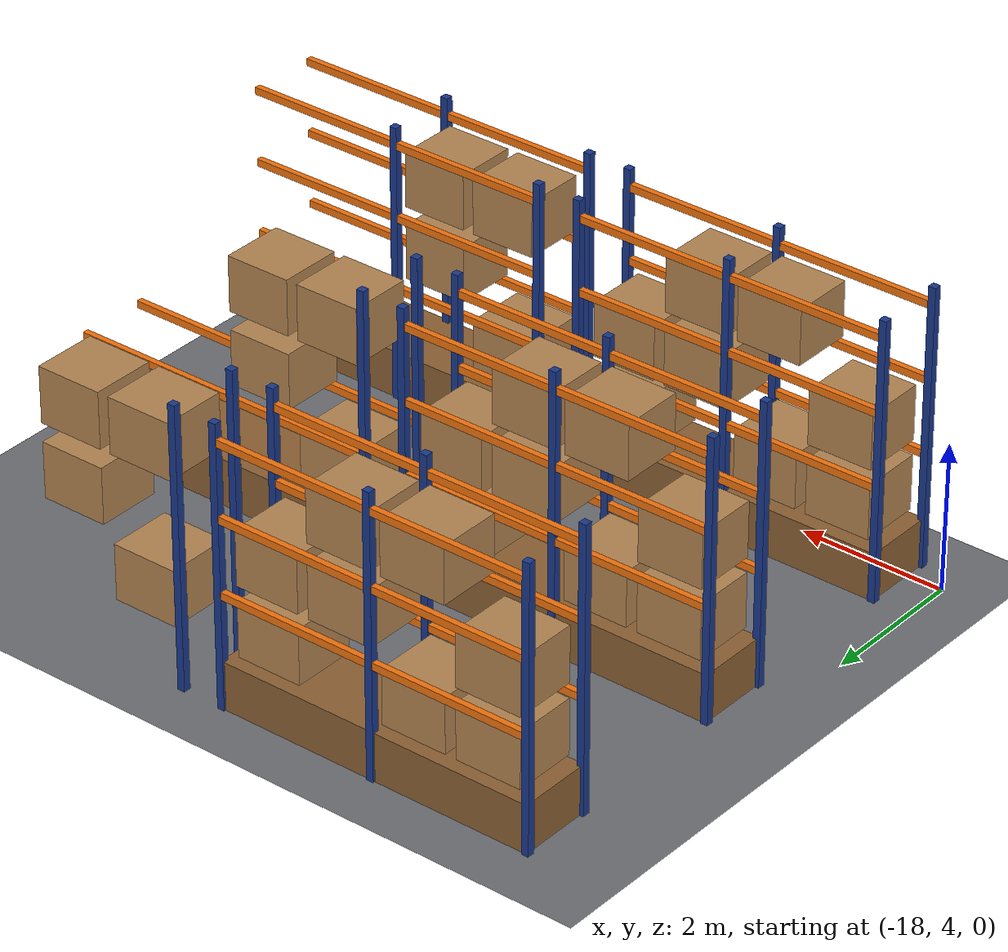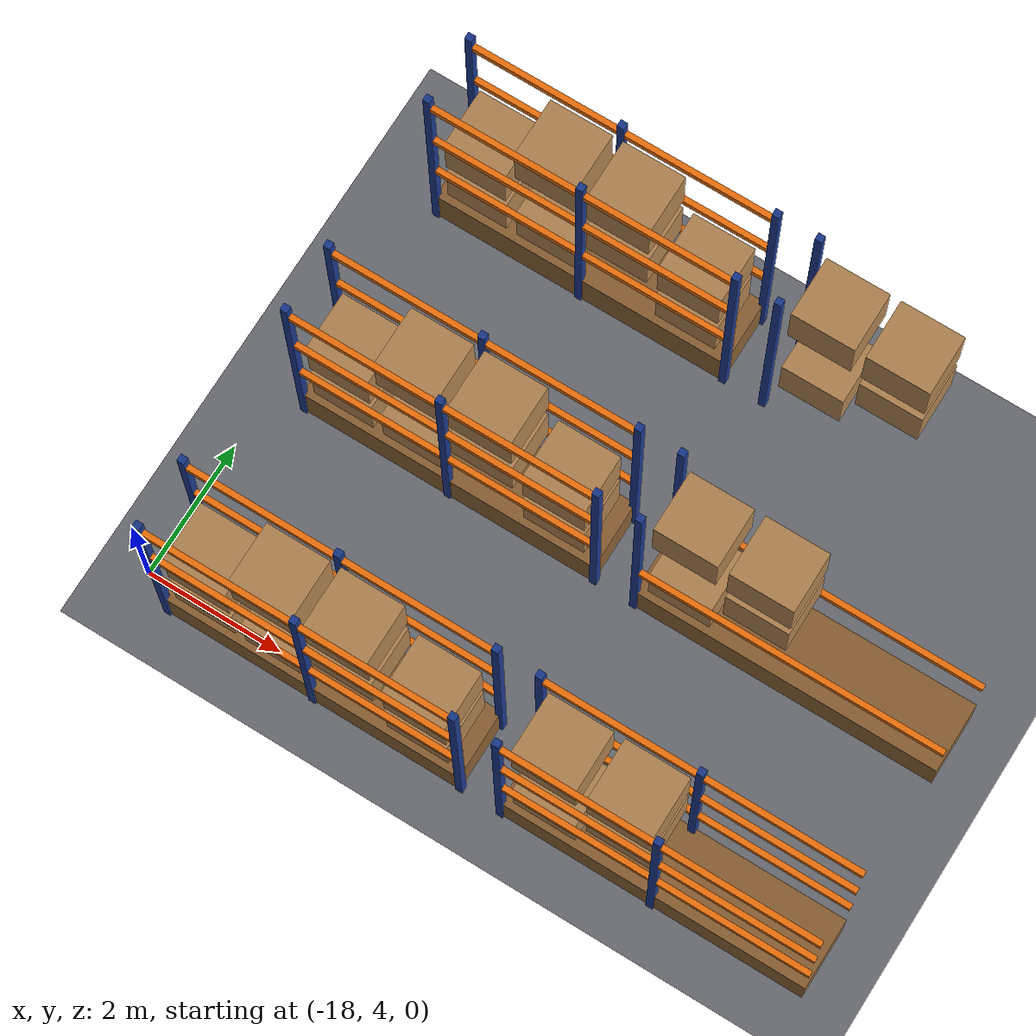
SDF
<sdf version="1.8">
 <world name="factory">
  <model name="ground">
   <static>true</static>
   <link name="l">
    <collision name="c">
     <geometry><plane><normal>0 0 1</normal><size>60 40</size></plane></geometry>
     <surface><friction><ode><mu>1.0</mu><mu2>1.0</mu2></ode></friction></surface>
    </collision>
    <visual name="v">
     <geometry><plane><normal>0 0 1</normal><size>60 40</size></plane></geometry>
     <material>
      <ambient>0.42 0.43 0.45 1</ambient>
      <diffuse>0.42 0.43 0.45 1</diffuse>
      <specular>0.3 0.3 0.3 1</specular>
      <pbr><metal><metalness>0.0</metalness><roughness>0.85</roughness></metal></pbr>
     </material>
    </visual>
   </link>
  </model>
  <model name="pallet_racks">
   <static>true</static>
   <link name="l0">
    <pose>-15.300 4.200 0.325 0 0 0.000</pose>
    <collision name="c"><geometry><box><size>4.4 1.0 0.65</size></box></geometry></collision>
    <visual name="v">
     <geometry><box><size>4.4 1.0 0.65</size></box></geometry>
     <material>
      <ambient>0.55 0.38 0.2 1</ambient>
      <diffuse>0.55 0.38 0.2 1</diffuse>
      <specular>0.3 0.3 0.3 1</specular>
      <pbr><metal><metalness>0.0</metalness><roughness>0.9</roughness></metal></pbr>
     </material>
    </visual>
   </link>
   <link name="l1">
    <pose>-16.900 4.200 1.125 0 0 0.000</pose>
    <collision name="c"><geometry><box><size>0.9 0.85 0.75</size></box></geometry></collision>
    <visual name="v">
     <geometry><box><size>0.9 0.85 0.75</size></box></geometry>
     <material>
      <ambient>0.7 0.52 0.32 1</ambient>
      <diffuse>0.7 0.52 0.32 1</diffuse>
      <specular>0.3 0.3 0.3 1</specular>
      <pbr><metal><metalness>0.0</metalness><roughness>0.95</roughness></metal></pbr>
     </material>
    </visual>
   </link>
   <link name="l2">
    <pose>-15.850 4.200 1.125 0 0 0.000</pose>
    <collision name="c"><geometry><box><size>0.9 0.85 0.75</size></box></geometry></collision>
    <visual name="v">
     <geometry><box><size>0.9 0.85 0.75</size></box></geometry>
     <material>
      <ambient>0.7 0.52 0.32 1</ambient>
      <diffuse>0.7 0.52 0.32 1</diffuse>
      <specular>0.3 0.3 0.3 1</specular>
      <pbr><metal><metalness>0.0</metalness><roughness>0.95</roughness></metal></pbr>
     </material>
    </visual>
   </link>
   <link name="l3">
    <pose>-13.750 4.200 1.125 0 0 0.000</pose>
    <collision name="c"><geometry><box><size>0.9 0.85 0.75</size></box></geometry></collision>
    <visual name="v">
     <geometry><box><size>0.9 0.85 0.75</size></box></geometry>
     <material>
      <ambient>0.7 0.52 0.32 1</ambient>
      <diffuse>0.7 0.52 0.32 1</diffuse>
      <specular>0.3 0.3 0.3 1</specular>
      <pbr><metal><metalness>0.0</metalness><roughness>0.95</roughness></metal></pbr>
     </material>
    </visual>
   </link>
   <link name="l4">
    <pose>-16.900 4.200 2.075 0 0 0.000</pose>
    <collision name="c"><geometry><box><size>0.9 0.85 0.75</size></box></geometry></collision>
    <visual name="v">
     <geometry><box><size>0.9 0.85 0.75</size></box></geometry>
     <material>
      <ambient>0.7 0.52 0.32 1</ambient>
      <diffuse>0.7 0.52 0.32 1</diffuse>
      <specular>0.3 0.3 0.3 1</specular>
      <pbr><metal><metalness>0.0</metalness><roughness>0.95</roughness></metal></pbr>
     </material>
    </visual>
   </link>
   <link name="l5">
    <pose>-14.800 4.200 2.075 0 0 0.000</pose>
    <collision name="c"><geometry><box><size>0.9 0.85 0.75</size></box></geometry></collision>
    <visual name="v">
     <geometry><box><size>0.9 0.85 0.75</size></box></geometry>
     <material>
      <ambient>0.7 0.52 0.32 1</ambient>
      <diffuse>0.7 0.52 0.32 1</diffuse>
      <specular>0.3 0.3 0.3 1</specular>
      <pbr><metal><metalness>0.0</metalness><roughness>0.95</roughness></metal></pbr>
     </material>
    </visual>
   </link>
   <link name="l6">
    <pose>-13.750 4.200 2.075 0 0 0.000</pose>
    <collision name="c"><geometry><box><size>0.9 0.85 0.75</size></box></geometry></collision>
    <visual name="v">
     <geometry><box><size>0.9 0.85 0.75</size></box></geometry>
     <material>
      <ambient>0.7 0.52 0.32 1</ambient>
      <diffuse>0.7 0.52 0.32 1</diffuse>
      <specular>0.3 0.3 0.3 1</specular>
      <pbr><metal><metalness>0.0</metalness><roughness>0.95</roughness></metal></pbr>
     </material>
    </visual>
   </link>
   <link name="l7">
    <pose>-15.850 4.200 3.075 0 0 0.000</pose>
    <collision name="c"><geometry><box><size>0.9 0.85 0.75</size></box></geometry></collision>
    <visual name="v">
     <geometry><box><size>0.9 0.85 0.75</size></box></geometry>
     <material>
      <ambient>0.7 0.52 0.32 1</ambient>
      <diffuse>0.7 0.52 0.32 1</diffuse>
      <specular>0.3 0.3 0.3 1</specular>
      <pbr><metal><metalness>0.0</metalness><roughness>0.95</roughness></metal></pbr>
     </material>
    </visual>
   </link>
   <link name="l8">
    <pose>-14.800 4.200 3.075 0 0 0.000</pose>
    <collision name="c"><geometry><box><size>0.9 0.85 0.75</size></box></geometry></collision>
    <visual name="v">
     <geometry><box><size>0.9 0.85 0.75</size></box></geometry>
     <material>
      <ambient>0.7 0.52 0.32 1</ambient>
      <diffuse>0.7 0.52 0.32 1</diffuse>
      <specular>0.3 0.3 0.3 1</specular>
      <pbr><metal><metalness>0.0</metalness><roughness>0.95</roughness></metal></pbr>
     </material>
    </visual>
   </link>
   <link name="l9">
    <pose>-15.300 3.720 1.550 0 0 0.000</pose>
    <collision name="c"><geometry><box><size>4.4 0.08 0.1</size></box></geometry></collision>
    <visual name="v">
     <geometry><box><size>4.4 0.08 0.1</size></box></geometry>
     <material>
      <ambient>0.95 0.45 0.05 1</ambient>
      <diffuse>0.95 0.45 0.05 1</diffuse>
      <specular>0.3 0.3 0.3 1</specular>
      <pbr><metal><metalness>0.5</metalness><roughness>0.4</roughness></metal></pbr>
     </material>
    </visual>
   </link>
   <link name="l10">
    <pose>-15.300 4.680 1.550 0 0 0.000</pose>
    <collision name="c"><geometry><box><size>4.4 0.08 0.1</size></box></geometry></collision>
    <visual name="v">
     <geometry><box><size>4.4 0.08 0.1</size></box></geometry>
     <material>
      <ambient>0.95 0.45 0.05 1</ambient>
      <diffuse>0.95 0.45 0.05 1</diffuse>
      <specular>0.3 0.3 0.3 1</specular>
      <pbr><metal><metalness>0.5</metalness><roughness>0.4</roughness></metal></pbr>
     </material>
    </visual>
   </link>
   <link name="l11">
    <pose>-15.300 3.720 2.550 0 0 0.000</pose>
    <collision name="c"><geometry><box><size>4.4 0.08 0.1</size></box></geometry></collision>
    <visual name="v">
     <geometry><box><size>4.4 0.08 0.1</size></box></geometry>
     <material>
      <ambient>0.95 0.45 0.05 1</ambient>
      <diffuse>0.95 0.45 0.05 1</diffuse>
      <specular>0.3 0.3 0.3 1</specular>
      <pbr><metal><metalness>0.5</metalness><roughness>0.4</roughness></metal></pbr>
     </material>
    </visual>
   </link>
   <link name="l12">
    <pose>-15.300 4.680 2.550 0 0 0.000</pose>
    <collision name="c"><geometry><box><size>4.4 0.08 0.1</size></box></geometry></collision>
    <visual name="v">
     <geometry><box><size>4.4 0.08 0.1</size></box></geometry>
     <material>
      <ambient>0.95 0.45 0.05 1</ambient>
      <diffuse>0.95 0.45 0.05 1</diffuse>
      <specular>0.3 0.3 0.3 1</specular>
      <pbr><metal><metalness>0.5</metalness><roughness>0.4</roughness></metal></pbr>
     </material>
    </visual>
   </link>
   <link name="l13">
    <pose>-15.300 3.720 3.550 0 0 0.000</pose>
    <collision name="c"><geometry><box><size>4.4 0.08 0.1</size></box></geometry></collision>
    <visual name="v">
     <geometry><box><size>4.4 0.08 0.1</size></box></geometry>
     <material>
      <ambient>0.95 0.45 0.05 1</ambient>
      <diffuse>0.95 0.45 0.05 1</diffuse>
      <specular>0.3 0.3 0.3 1</specular>
      <pbr><metal><metalness>0.5</metalness><roughness>0.4</roughness></metal></pbr>
     </material>
    </visual>
   </link>
   <link name="l14">
    <pose>-15.300 4.680 3.550 0 0 0.000</pose>
    <collision name="c"><geometry><box><size>4.4 0.08 0.1</size></box></geometry></collision>
    <visual name="v">
     <geometry><box><size>4.4 0.08 0.1</size></box></geometry>
     <material>
      <ambient>0.95 0.45 0.05 1</ambient>
      <diffuse>0.95 0.45 0.05 1</diffuse>
      <specular>0.3 0.3 0.3 1</specular>
      <pbr><metal><metalness>0.5</metalness><roughness>0.4</roughness></metal></pbr>
     </material>
    </visual>
   </link>
   <link name="l15">
    <pose>-17.500 3.720 1.900 0 0 0.000</pose>
    <collision name="c"><geometry><box><size>0.1 0.1 3.8</size></box></geometry></collision>
    <visual name="v">
     <geometry><box><size>0.1 0.1 3.8</size></box></geometry>
     <material>
      <ambient>0.1 0.22 0.55 1</ambient>
      <diffuse>0.1 0.22 0.55 1</diffuse>
      <specular>0.3 0.3 0.3 1</specular>
      <pbr><metal><metalness>0.6</metalness><roughness>0.4</roughness></metal></pbr>
     </material>
    </visual>
   </link>
   <link name="l16">
    <pose>-17.500 4.680 1.900 0 0 0.000</pose>
    <collision name="c"><geometry><box><size>0.1 0.1 3.8</size></box></geometry></collision>
    <visual name="v">
     <geometry><box><size>0.1 0.1 3.8</size></box></geometry>
     <material>
      <ambient>0.1 0.22 0.55 1</ambient>
      <diffuse>0.1 0.22 0.55 1</diffuse>
      <specular>0.3 0.3 0.3 1</specular>
      <pbr><metal><metalness>0.6</metalness><roughness>0.4</roughness></metal></pbr>
     </material>
    </visual>
   </link>
   <link name="l17">
    <pose>-15.300 3.720 1.900 0 0 0.000</pose>
    <collision name="c"><geometry><box><size>0.1 0.1 3.8</size></box></geometry></collision>
    <visual name="v">
     <geometry><box><size>0.1 0.1 3.8</size></box></geometry>
     <material>
      <ambient>0.1 0.22 0.55 1</ambient>
      <diffuse>0.1 0.22 0.55 1</diffuse>
      <specular>0.3 0.3 0.3 1</specular>
      <pbr><metal><metalness>0.6</metalness><roughness>0.4</roughness></metal></pbr>
     </material>
    </visual>
   </link>
   <link name="l18">
    <pose>-15.300 4.680 1.900 0 0 0.000</pose>
    <collision name="c"><geometry><box><size>0.1 0.1 3.8</size></box></geometry></collision>
    <visual name="v">
     <geometry><box><size>0.1 0.1 3.8</size></box></geometry>
     <material>
      <ambient>0.1 0.22 0.55 1</ambient>
      <diffuse>0.1 0.22 0.55 1</diffuse>
      <specular>0.3 0.3 0.3 1</specular>
      <pbr><metal><metalness>0.6</metalness><roughness>0.4</roughness></metal></pbr>
     </material>
    </visual>
   </link>
   <link name="l19">
    <pose>-13.100 3.720 1.900 0 0 0.000</pose>
    <collision name="c"><geometry><box><size>0.1 0.1 3.8</size></box></geometry></collision>
    <visual name="v">
     <geometry><box><size>0.1 0.1 3.8</size></box></geometry>
     <material>
      <ambient>0.1 0.22 0.55 1</ambient>
      <diffuse>0.1 0.22 0.55 1</diffuse>
      <specular>0.3 0.3 0.3 1</specular>
      <pbr><metal><metalness>0.6</metalness><roughness>0.4</roughness></metal></pbr>
     </material>
    </visual>
   </link>
   <link name="l20">
    <pose>-13.100 4.680 1.900 0 0 0.000</pose>
    <collision name="c"><geometry><box><size>0.1 0.1 3.8</size></box></geometry></collision>
    <visual name="v">
     <geometry><box><size>0.1 0.1 3.8</size></box></geometry>
     <material>
      <ambient>0.1 0.22 0.55 1</ambient>
      <diffuse>0.1 0.22 0.55 1</diffuse>
      <specular>0.3 0.3 0.3 1</specular>
      <pbr><metal><metalness>0.6</metalness><roughness>0.4</roughness></metal></pbr>
     </material>
    </visual>
   </link>
   <link name="l21">
    <pose>-10.300 4.200 0.325 0 0 0.000</pose>
    <collision name="c"><geometry><box><size>4.4 1.0 0.65</size></box></geometry></collision>
    <visual name="v">
     <geometry><box><size>4.4 1.0 0.65</size></box></geometry>
     <material>
      <ambient>0.55 0.38 0.2 1</ambient>
      <diffuse>0.55 0.38 0.2 1</diffuse>
      <specular>0.3 0.3 0.3 1</specular>
      <pbr><metal><metalness>0.0</metalness><roughness>0.9</roughness></metal></pbr>
     </material>
    </visual>
   </link>
   <link name="l22">
    <pose>-11.900 4.200 1.125 0 0 0.000</pose>
    <collision name="c"><geometry><box><size>0.9 0.85 0.75</size></box></geometry></collision>
    <visual name="v">
     <geometry><box><size>0.9 0.85 0.75</size></box></geometry>
     <material>
      <ambient>0.7 0.52 0.32 1</ambient>
      <diffuse>0.7 0.52 0.32 1</diffuse>
      <specular>0.3 0.3 0.3 1</specular>
      <pbr><metal><metalness>0.0</metalness><roughness>0.95</roughness></metal></pbr>
     </material>
    </visual>
   </link>
   <link name="l25">
    <pose>-10.850 4.200 2.075 0 0 0.000</pose>
    <collision name="c"><geometry><box><size>0.9 0.85 0.75</size></box></geometry></collision>
    <visual name="v">
     <geometry><box><size>0.9 0.85 0.75</size></box></geometry>
     <material>
      <ambient>0.7 0.52 0.32 1</ambient>
      <diffuse>0.7 0.52 0.32 1</diffuse>
      <specular>0.3 0.3 0.3 1</specular>
      <pbr><metal><metalness>0.0</metalness><roughness>0.95</roughness></metal></pbr>
     </material>
    </visual>
   </link>
   <link name="l27">
    <pose>-11.900 4.200 3.075 0 0 0.000</pose>
    <collision name="c"><geometry><box><size>0.9 0.85 0.75</size></box></geometry></collision>
    <visual name="v">
     <geometry><box><size>0.9 0.85 0.75</size></box></geometry>
     <material>
      <ambient>0.7 0.52 0.32 1</ambient>
      <diffuse>0.7 0.52 0.32 1</diffuse>
      <specular>0.3 0.3 0.3 1</specular>
      <pbr><metal><metalness>0.0</metalness><roughness>0.95</roughness></metal></pbr>
     </material>
    </visual>
   </link>
   <link name="l28">
    <pose>-10.850 4.200 3.075 0 0 0.000</pose>
    <collision name="c"><geometry><box><size>0.9 0.85 0.75</size></box></geometry></collision>
    <visual name="v">
     <geometry><box><size>0.9 0.85 0.75</size></box></geometry>
     <material>
      <ambient>0.7 0.52 0.32 1</ambient>
      <diffuse>0.7 0.52 0.32 1</diffuse>
      <specular>0.3 0.3 0.3 1</specular>
      <pbr><metal><metalness>0.0</metalness><roughness>0.95</roughness></metal></pbr>
     </material>
    </visual>
   </link>
   <link name="l30">
    <pose>-10.300 3.720 1.550 0 0 0.000</pose>
    <collision name="c"><geometry><box><size>4.4 0.08 0.1</size></box></geometry></collision>
    <visual name="v">
     <geometry><box><size>4.4 0.08 0.1</size></box></geometry>
     <material>
      <ambient>0.95 0.45 0.05 1</ambient>
      <diffuse>0.95 0.45 0.05 1</diffuse>
      <specular>0.3 0.3 0.3 1</specular>
      <pbr><metal><metalness>0.5</metalness><roughness>0.4</roughness></metal></pbr>
     </material>
    </visual>
   </link>
   <link name="l31">
    <pose>-10.300 4.680 1.550 0 0 0.000</pose>
    <collision name="c"><geometry><box><size>4.4 0.08 0.1</size></box></geometry></collision>
    <visual name="v">
     <geometry><box><size>4.4 0.08 0.1</size></box></geometry>
     <material>
      <ambient>0.95 0.45 0.05 1</ambient>
      <diffuse>0.95 0.45 0.05 1</diffuse>
      <specular>0.3 0.3 0.3 1</specular>
      <pbr><metal><metalness>0.5</metalness><roughness>0.4</roughness></metal></pbr>
     </material>
    </visual>
   </link>
   <link name="l32">
    <pose>-10.300 3.720 2.550 0 0 0.000</pose>
    <collision name="c"><geometry><box><size>4.4 0.08 0.1</size></box></geometry></collision>
    <visual name="v">
     <geometry><box><size>4.4 0.08 0.1</size></box></geometry>
     <material>
      <ambient>0.95 0.45 0.05 1</ambient>
      <diffuse>0.95 0.45 0.05 1</diffuse>
      <specular>0.3 0.3 0.3 1</specular>
      <pbr><metal><metalness>0.5</metalness><roughness>0.4</roughness></metal></pbr>
     </material>
    </visual>
   </link>
   <link name="l33">
    <pose>-10.300 4.680 2.550 0 0 0.000</pose>
    <collision name="c"><geometry><box><size>4.4 0.08 0.1</size></box></geometry></collision>
    <visual name="v">
     <geometry><box><size>4.4 0.08 0.1</size></box></geometry>
     <material>
      <ambient>0.95 0.45 0.05 1</ambient>
      <diffuse>0.95 0.45 0.05 1</diffuse>
      <specular>0.3 0.3 0.3 1</specular>
      <pbr><metal><metalness>0.5</metalness><roughness>0.4</roughness></metal></pbr>
     </material>
    </visual>
   </link>
   <link name="l34">
    <pose>-10.300 3.720 3.550 0 0 0.000</pose>
    <collision name="c"><geometry><box><size>4.4 0.08 0.1</size></box></geometry></collision>
    <visual name="v">
     <geometry><box><size>4.4 0.08 0.1</size></box></geometry>
     <material>
      <ambient>0.95 0.45 0.05 1</ambient>
      <diffuse>0.95 0.45 0.05 1</diffuse>
      <specular>0.3 0.3 0.3 1</specular>
      <pbr><metal><metalness>0.5</metalness><roughness>0.4</roughness></metal></pbr>
     </material>
    </visual>
   </link>
   <link name="l35">
    <pose>-10.300 4.680 3.550 0 0 0.000</pose>
    <collision name="c"><geometry><box><size>4.4 0.08 0.1</size></box></geometry></collision>
    <visual name="v">
     <geometry><box><size>4.4 0.08 0.1</size></box></geometry>
     <material>
      <ambient>0.95 0.45 0.05 1</ambient>
      <diffuse>0.95 0.45 0.05 1</diffuse>
      <specular>0.3 0.3 0.3 1</specular>
      <pbr><metal><metalness>0.5</metalness><roughness>0.4</roughness></metal></pbr>
     </material>
    </visual>
   </link>
   <link name="l36">
    <pose>-12.500 3.720 1.900 0 0 0.000</pose>
    <collision name="c"><geometry><box><size>0.1 0.1 3.8</size></box></geometry></collision>
    <visual name="v">
     <geometry><box><size>0.1 0.1 3.8</size></box></geometry>
     <material>
      <ambient>0.1 0.22 0.55 1</ambient>
      <diffuse>0.1 0.22 0.55 1</diffuse>
      <specular>0.3 0.3 0.3 1</specular>
      <pbr><metal><metalness>0.6</metalness><roughness>0.4</roughness></metal></pbr>
     </material>
    </visual>
   </link>
   <link name="l37">
    <pose>-12.500 4.680 1.900 0 0 0.000</pose>
    <collision name="c"><geometry><box><size>0.1 0.1 3.8</size></box></geometry></collision>
    <visual name="v">
     <geometry><box><size>0.1 0.1 3.8</size></box></geometry>
     <material>
      <ambient>0.1 0.22 0.55 1</ambient>
      <diffuse>0.1 0.22 0.55 1</diffuse>
      <specular>0.3 0.3 0.3 1</specular>
      <pbr><metal><metalness>0.6</metalness><roughness>0.4</roughness></metal></pbr>
     </material>
    </visual>
   </link>
   <link name="l38">
    <pose>-10.300 3.720 1.900 0 0 0.000</pose>
    <collision name="c"><geometry><box><size>0.1 0.1 3.8</size></box></geometry></collision>
    <visual name="v">
     <geometry><box><size>0.1 0.1 3.8</size></box></geometry>
     <material>
      <ambient>0.1 0.22 0.55 1</ambient>
      <diffuse>0.1 0.22 0.55 1</diffuse>
      <specular>0.3 0.3 0.3 1</specular>
      <pbr><metal><metalness>0.6</metalness><roughness>0.4</roughness></metal></pbr>
     </material>
    </visual>
   </link>
   <link name="l39">
    <pose>-10.300 4.680 1.900 0 0 0.000</pose>
    <collision name="c"><geometry><box><size>0.1 0.1 3.8</size></box></geometry></collision>
    <visual name="v">
     <geometry><box><size>0.1 0.1 3.8</size></box></geometry>
     <material>
      <ambient>0.1 0.22 0.55 1</ambient>
      <diffuse>0.1 0.22 0.55 1</diffuse>
      <specular>0.3 0.3 0.3 1</specular>
      <pbr><metal><metalness>0.6</metalness><roughness>0.4</roughness></metal></pbr>
     </material>
    </visual>
   </link>
   <link name="l63">
    <pose>-15.300 7.400 0.325 0 0 0.000</pose>
    <collision name="c"><geometry><box><size>4.4 1.0 0.65</size></box></geometry></collision>
    <visual name="v">
     <geometry><box><size>4.4 1.0 0.65</size></box></geometry>
     <material>
      <ambient>0.55 0.38 0.2 1</ambient>
      <diffuse>0.55 0.38 0.2 1</diffuse>
      <specular>0.3 0.3 0.3 1</specular>
      <pbr><metal><metalness>0.0</metalness><roughness>0.9</roughness></metal></pbr>
     </material>
    </visual>
   </link>
   <link name="l64">
    <pose>-16.900 7.400 1.125 0 0 0.000</pose>
    <collision name="c"><geometry><box><size>0.9 0.85 0.75</size></box></geometry></collision>
    <visual name="v">
     <geometry><box><size>0.9 0.85 0.75</size></box></geometry>
     <material>
      <ambient>0.7 0.52 0.32 1</ambient>
      <diffuse>0.7 0.52 0.32 1</diffuse>
      <specular>0.3 0.3 0.3 1</specular>
      <pbr><metal><metalness>0.0</metalness><roughness>0.95</roughness></metal></pbr>
     </material>
    </visual>
   </link>
   <link name="l65">
    <pose>-15.850 7.400 1.125 0 0 0.000</pose>
    <collision name="c"><geometry><box><size>0.9 0.85 0.75</size></box></geometry></collision>
    <visual name="v">
     <geometry><box><size>0.9 0.85 0.75</size></box></geometry>
     <material>
      <ambient>0.7 0.52 0.32 1</ambient>
      <diffuse>0.7 0.52 0.32 1</diffuse>
      <specular>0.3 0.3 0.3 1</specular>
      <pbr><metal><metalness>0.0</metalness><roughness>0.95</roughness></metal></pbr>
     </material>
    </visual>
   </link>
   <link name="l66">
    <pose>-13.750 7.400 1.125 0 0 0.000</pose>
    <collision name="c"><geometry><box><size>0.9 0.85 0.75</size></box></geometry></collision>
    <visual name="v">
     <geometry><box><size>0.9 0.85 0.75</size></box></geometry>
     <material>
      <ambient>0.7 0.52 0.32 1</ambient>
      <diffuse>0.7 0.52 0.32 1</diffuse>
      <specular>0.3 0.3 0.3 1</specular>
      <pbr><metal><metalness>0.0</metalness><roughness>0.95</roughness></metal></pbr>
     </material>
    </visual>
   </link>
   <link name="l67">
    <pose>-16.900 7.400 2.075 0 0 0.000</pose>
    <collision name="c"><geometry><box><size>0.9 0.85 0.75</size></box></geometry></collision>
    <visual name="v">
     <geometry><box><size>0.9 0.85 0.75</size></box></geometry>
     <material>
      <ambient>0.7 0.52 0.32 1</ambient>
      <diffuse>0.7 0.52 0.32 1</diffuse>
      <specular>0.3 0.3 0.3 1</specular>
      <pbr><metal><metalness>0.0</metalness><roughness>0.95</roughness></metal></pbr>
     </material>
    </visual>
   </link>
   <link name="l68">
    <pose>-14.800 7.400 2.075 0 0 0.000</pose>
    <collision name="c"><geometry><box><size>0.9 0.85 0.75</size></box></geometry></collision>
    <visual name="v">
     <geometry><box><size>0.9 0.85 0.75</size></box></geometry>
     <material>
      <ambient>0.7 0.52 0.32 1</ambient>
      <diffuse>0.7 0.52 0.32 1</diffuse>
      <specular>0.3 0.3 0.3 1</specular>
      <pbr><metal><metalness>0.0</metalness><roughness>0.95</roughness></metal></pbr>
     </material>
    </visual>
   </link>
   <link name="l69">
    <pose>-13.750 7.400 2.075 0 0 0.000</pose>
    <collision name="c"><geometry><box><size>0.9 0.85 0.75</size></box></geometry></collision>
    <visual name="v">
     <geometry><box><size>0.9 0.85 0.75</size></box></geometry>
     <material>
      <ambient>0.7 0.52 0.32 1</ambient>
      <diffuse>0.7 0.52 0.32 1</diffuse>
      <specular>0.3 0.3 0.3 1</specular>
      <pbr><metal><metalness>0.0</metalness><roughness>0.95</roughness></metal></pbr>
     </material>
    </visual>
   </link>
   <link name="l70">
    <pose>-15.850 7.400 3.075 0 0 0.000</pose>
    <collision name="c"><geometry><box><size>0.9 0.85 0.75</size></box></geometry></collision>
    <visual name="v">
     <geometry><box><size>0.9 0.85 0.75</size></box></geometry>
     <material>
      <ambient>0.7 0.52 0.32 1</ambient>
      <diffuse>0.7 0.52 0.32 1</diffuse>
      <specular>0.3 0.3 0.3 1</specular>
      <pbr><metal><metalness>0.0</metalness><roughness>0.95</roughness></metal></pbr>
     </material>
    </visual>
   </link>
   <link name="l71">
    <pose>-14.800 7.400 3.075 0 0 0.000</pose>
    <collision name="c"><geometry><box><size>0.9 0.85 0.75</size></box></geometry></collision>
    <visual name="v">
     <geometry><box><size>0.9 0.85 0.75</size></box></geometry>
     <material>
      <ambient>0.7 0.52 0.32 1</ambient>
      <diffuse>0.7 0.52 0.32 1</diffuse>
      <specular>0.3 0.3 0.3 1</specular>
      <pbr><metal><metalness>0.0</metalness><roughness>0.95</roughness></metal></pbr>
     </material>
    </visual>
   </link>
   <link name="l72">
    <pose>-15.300 6.920 1.550 0 0 0.000</pose>
    <collision name="c"><geometry><box><size>4.4 0.08 0.1</size></box></geometry></collision>
    <visual name="v">
     <geometry><box><size>4.4 0.08 0.1</size></box></geometry>
     <material>
      <ambient>0.95 0.45 0.05 1</ambient>
      <diffuse>0.95 0.45 0.05 1</diffuse>
      <specular>0.3 0.3 0.3 1</specular>
      <pbr><metal><metalness>0.5</metalness><roughness>0.4</roughness></metal></pbr>
     </material>
    </visual>
   </link>
   <link name="l73">
    <pose>-15.300 7.880 1.550 0 0 0.000</pose>
    <collision name="c"><geometry><box><size>4.4 0.08 0.1</size></box></geometry></collision>
    <visual name="v">
     <geometry><box><size>4.4 0.08 0.1</size></box></geometry>
     <material>
      <ambient>0.95 0.45 0.05 1</ambient>
      <diffuse>0.95 0.45 0.05 1</diffuse>
      <specular>0.3 0.3 0.3 1</specular>
      <pbr><metal><metalness>0.5</metalness><roughness>0.4</roughness></metal></pbr>
     </material>
    </visual>
   </link>
   <link name="l74">
    <pose>-15.300 6.920 2.550 0 0 0.000</pose>
    <collision name="c"><geometry><box><size>4.4 0.08 0.1</size></box></geometry></collision>
    <visual name="v">
     <geometry><box><size>4.4 0.08 0.1</size></box></geometry>
     <material>
      <ambient>0.95 0.45 0.05 1</ambient>
      <diffuse>0.95 0.45 0.05 1</diffuse>
      <specular>0.3 0.3 0.3 1</specular>
      <pbr><metal><metalness>0.5</metalness><roughness>0.4</roughness></metal></pbr>
     </material>
    </visual>
   </link>
   <link name="l75">
    <pose>-15.300 7.880 2.550 0 0 0.000</pose>
    <collision name="c"><geometry><box><size>4.4 0.08 0.1</size></box></geometry></collision>
    <visual name="v">
     <geometry><box><size>4.4 0.08 0.1</size></box></geometry>
     <material>
      <ambient>0.95 0.45 0.05 1</ambient>
      <diffuse>0.95 0.45 0.05 1</diffuse>
      <specular>0.3 0.3 0.3 1</specular>
      <pbr><metal><metalness>0.5</metalness><roughness>0.4</roughness></metal></pbr>
     </material>
    </visual>
   </link>
   <link name="l76">
    <pose>-15.300 6.920 3.550 0 0 0.000</pose>
    <collision name="c"><geometry><box><size>4.4 0.08 0.1</size></box></geometry></collision>
    <visual name="v">
     <geometry><box><size>4.4 0.08 0.1</size></box></geometry>
     <material>
      <ambient>0.95 0.45 0.05 1</ambient>
      <diffuse>0.95 0.45 0.05 1</diffuse>
      <specular>0.3 0.3 0.3 1</specular>
      <pbr><metal><metalness>0.5</metalness><roughness>0.4</roughness></metal></pbr>
     </material>
    </visual>
   </link>
   <link name="l77">
    <pose>-15.300 7.880 3.550 0 0 0.000</pose>
    <collision name="c"><geometry><box><size>4.4 0.08 0.1</size></box></geometry></collision>
    <visual name="v">
     <geometry><box><size>4.4 0.08 0.1</size></box></geometry>
     <material>
      <ambient>0.95 0.45 0.05 1</ambient>
      <diffuse>0.95 0.45 0.05 1</diffuse>
      <specular>0.3 0.3 0.3 1</specular>
      <pbr><metal><metalness>0.5</metalness><roughness>0.4</roughness></metal></pbr>
     </material>
    </visual>
   </link>
   <link name="l78">
    <pose>-17.500 6.920 1.900 0 0 0.000</pose>
    <collision name="c"><geometry><box><size>0.1 0.1 3.8</size></box></geometry></collision>
    <visual name="v">
     <geometry><box><size>0.1 0.1 3.8</size></box></geometry>
     <material>
      <ambient>0.1 0.22 0.55 1</ambient>
      <diffuse>0.1 0.22 0.55 1</diffuse>
      <specular>0.3 0.3 0.3 1</specular>
      <pbr><metal><metalness>0.6</metalness><roughness>0.4</roughness></metal></pbr>
     </material>
    </visual>
   </link>
   <link name="l79">
    <pose>-17.500 7.880 1.900 0 0 0.000</pose>
    <collision name="c"><geometry><box><size>0.1 0.1 3.8</size></box></geometry></collision>
    <visual name="v">
     <geometry><box><size>0.1 0.1 3.8</size></box></geometry>
     <material>
      <ambient>0.1 0.22 0.55 1</ambient>
      <diffuse>0.1 0.22 0.55 1</diffuse>
      <specular>0.3 0.3 0.3 1</specular>
      <pbr><metal><metalness>0.6</metalness><roughness>0.4</roughness></metal></pbr>
     </material>
    </visual>
   </link>
   <link name="l80">
    <pose>-15.300 6.920 1.900 0 0 0.000</pose>
    <collision name="c"><geometry><box><size>0.1 0.1 3.8</size></box></geometry></collision>
    <visual name="v">
     <geometry><box><size>0.1 0.1 3.8</size></box></geometry>
     <material>
      <ambient>0.1 0.22 0.55 1</ambient>
      <diffuse>0.1 0.22 0.55 1</diffuse>
      <specular>0.3 0.3 0.3 1</specular>
      <pbr><metal><metalness>0.6</metalness><roughness>0.4</roughness></metal></pbr>
     </material>
    </visual>
   </link>
   <link name="l81">
    <pose>-15.300 7.880 1.900 0 0 0.000</pose>
    <collision name="c"><geometry><box><size>0.1 0.1 3.8</size></box></geometry></collision>
    <visual name="v">
     <geometry><box><size>0.1 0.1 3.8</size></box></geometry>
     <material>
      <ambient>0.1 0.22 0.55 1</ambient>
      <diffuse>0.1 0.22 0.55 1</diffuse>
      <specular>0.3 0.3 0.3 1</specular>
      <pbr><metal><metalness>0.6</metalness><roughness>0.4</roughness></metal></pbr>
     </material>
    </visual>
   </link>
   <link name="l82">
    <pose>-13.100 6.920 1.900 0 0 0.000</pose>
    <collision name="c"><geometry><box><size>0.1 0.1 3.8</size></box></geometry></collision>
    <visual name="v">
     <geometry><box><size>0.1 0.1 3.8</size></box></geometry>
     <material>
      <ambient>0.1 0.22 0.55 1</ambient>
      <diffuse>0.1 0.22 0.55 1</diffuse>
      <specular>0.3 0.3 0.3 1</specular>
      <pbr><metal><metalness>0.6</metalness><roughness>0.4</roughness></metal></pbr>
     </material>
    </visual>
   </link>
   <link name="l83">
    <pose>-13.100 7.880 1.900 0 0 0.000</pose>
    <collision name="c"><geometry><box><size>0.1 0.1 3.8</size></box></geometry></collision>
    <visual name="v">
     <geometry><box><size>0.1 0.1 3.8</size></box></geometry>
     <material>
      <ambient>0.1 0.22 0.55 1</ambient>
      <diffuse>0.1 0.22 0.55 1</diffuse>
      <specular>0.3 0.3 0.3 1</specular>
      <pbr><metal><metalness>0.6</metalness><roughness>0.4</roughness></metal></pbr>
     </material>
    </visual>
   </link>
   <link name="l84">
    <pose>-10.300 7.400 0.325 0 0 0.000</pose>
    <collision name="c"><geometry><box><size>4.4 1.0 0.65</size></box></geometry></collision>
    <visual name="v">
     <geometry><box><size>4.4 1.0 0.65</size></box></geometry>
     <material>
      <ambient>0.55 0.38 0.2 1</ambient>
      <diffuse>0.55 0.38 0.2 1</diffuse>
      <specular>0.3 0.3 0.3 1</specular>
      <pbr><metal><metalness>0.0</metalness><roughness>0.9</roughness></metal></pbr>
     </material>
    </visual>
   </link>
   <link name="l85">
    <pose>-11.900 7.400 1.125 0 0 0.000</pose>
    <collision name="c"><geometry><box><size>0.9 0.85 0.75</size></box></geometry></collision>
    <visual name="v">
     <geometry><box><size>0.9 0.85 0.75</size></box></geometry>
     <material>
      <ambient>0.7 0.52 0.32 1</ambient>
      <diffuse>0.7 0.52 0.32 1</diffuse>
      <specular>0.3 0.3 0.3 1</specular>
      <pbr><metal><metalness>0.0</metalness><roughness>0.95</roughness></metal></pbr>
     </material>
    </visual>
   </link>
   <link name="l88">
    <pose>-10.850 7.400 2.075 0 0 0.000</pose>
    <collision name="c"><geometry><box><size>0.9 0.85 0.75</size></box></geometry></collision>
    <visual name="v">
     <geometry><box><size>0.9 0.85 0.75</size></box></geometry>
     <material>
      <ambient>0.7 0.52 0.32 1</ambient>
      <diffuse>0.7 0.52 0.32 1</diffuse>
      <specular>0.3 0.3 0.3 1</specular>
      <pbr><metal><metalness>0.0</metalness><roughness>0.95</roughness></metal></pbr>
     </material>
    </visual>
   </link>
   <link name="l90">
    <pose>-11.900 7.400 3.075 0 0 0.000</pose>
    <collision name="c"><geometry><box><size>0.9 0.85 0.75</size></box></geometry></collision>
    <visual name="v">
     <geometry><box><size>0.9 0.85 0.75</size></box></geometry>
     <material>
      <ambient>0.7 0.52 0.32 1</ambient>
      <diffuse>0.7 0.52 0.32 1</diffuse>
      <specular>0.3 0.3 0.3 1</specular>
      <pbr><metal><metalness>0.0</metalness><roughness>0.95</roughness></metal></pbr>
     </material>
    </visual>
   </link>
   <link name="l91">
    <pose>-10.850 7.400 3.075 0 0 0.000</pose>
    <collision name="c"><geometry><box><size>0.9 0.85 0.75</size></box></geometry></collision>
    <visual name="v">
     <geometry><box><size>0.9 0.85 0.75</size></box></geometry>
     <material>
      <ambient>0.7 0.52 0.32 1</ambient>
      <diffuse>0.7 0.52 0.32 1</diffuse>
      <specular>0.3 0.3 0.3 1</specular>
      <pbr><metal><metalness>0.0</metalness><roughness>0.95</roughness></metal></pbr>
     </material>
    </visual>
   </link>
   <link name="l93">
    <pose>-10.300 6.920 1.550 0 0 0.000</pose>
    <collision name="c"><geometry><box><size>4.4 0.08 0.1</size></box></geometry></collision>
    <visual name="v">
     <geometry><box><size>4.4 0.08 0.1</size></box></geometry>
     <material>
      <ambient>0.95 0.45 0.05 1</ambient>
      <diffuse>0.95 0.45 0.05 1</diffuse>
      <specular>0.3 0.3 0.3 1</specular>
      <pbr><metal><metalness>0.5</metalness><roughness>0.4</roughness></metal></pbr>
     </material>
    </visual>
   </link>
   <link name="l94">
    <pose>-10.300 7.880 1.550 0 0 0.000</pose>
    <collision name="c"><geometry><box><size>4.4 0.08 0.1</size></box></geometry></collision>
    <visual name="v">
     <geometry><box><size>4.4 0.08 0.1</size></box></geometry>
     <material>
      <ambient>0.95 0.45 0.05 1</ambient>
      <diffuse>0.95 0.45 0.05 1</diffuse>
      <specular>0.3 0.3 0.3 1</specular>
      <pbr><metal><metalness>0.5</metalness><roughness>0.4</roughness></metal></pbr>
     </material>
    </visual>
   </link>
   <link name="l99">
    <pose>-12.500 6.920 1.900 0 0 0.000</pose>
    <collision name="c"><geometry><box><size>0.1 0.1 3.8</size></box></geometry></collision>
    <visual name="v">
     <geometry><box><size>0.1 0.1 3.8</size></box></geometry>
     <material>
      <ambient>0.1 0.22 0.55 1</ambient>
      <diffuse>0.1 0.22 0.55 1</diffuse>
      <specular>0.3 0.3 0.3 1</specular>
      <pbr><metal><metalness>0.6</metalness><roughness>0.4</roughness></metal></pbr>
     </material>
    </visual>
   </link>
   <link name="l100">
    <pose>-12.500 7.880 1.900 0 0 0.000</pose>
    <collision name="c"><geometry><box><size>0.1 0.1 3.8</size></box></geometry></collision>
    <visual name="v">
     <geometry><box><size>0.1 0.1 3.8</size></box></geometry>
     <material>
      <ambient>0.1 0.22 0.55 1</ambient>
      <diffuse>0.1 0.22 0.55 1</diffuse>
      <specular>0.3 0.3 0.3 1</specular>
      <pbr><metal><metalness>0.6</metalness><roughness>0.4</roughness></metal></pbr>
     </material>
    </visual>
   </link>
   <link name="l126">
    <pose>-15.300 10.600 0.325 0 0 0.000</pose>
    <collision name="c"><geometry><box><size>4.4 1.0 0.65</size></box></geometry></collision>
    <visual name="v">
     <geometry><box><size>4.4 1.0 0.65</size></box></geometry>
     <material>
      <ambient>0.55 0.38 0.2 1</ambient>
      <diffuse>0.55 0.38 0.2 1</diffuse>
      <specular>0.3 0.3 0.3 1</specular>
      <pbr><metal><metalness>0.0</metalness><roughness>0.9</roughness></metal></pbr>
     </material>
    </visual>
   </link>
   <link name="l127">
    <pose>-16.900 10.600 1.125 0 0 0.000</pose>
    <collision name="c"><geometry><box><size>0.9 0.85 0.75</size></box></geometry></collision>
    <visual name="v">
     <geometry><box><size>0.9 0.85 0.75</size></box></geometry>
     <material>
      <ambient>0.7 0.52 0.32 1</ambient>
      <diffuse>0.7 0.52 0.32 1</diffuse>
      <specular>0.3 0.3 0.3 1</specular>
      <pbr><metal><metalness>0.0</metalness><roughness>0.95</roughness></metal></pbr>
     </material>
    </visual>
   </link>
   <link name="l128">
    <pose>-15.850 10.600 1.125 0 0 0.000</pose>
    <collision name="c"><geometry><box><size>0.9 0.85 0.75</size></box></geometry></collision>
    <visual name="v">
     <geometry><box><size>0.9 0.85 0.75</size></box></geometry>
     <material>
      <ambient>0.7 0.52 0.32 1</ambient>
      <diffuse>0.7 0.52 0.32 1</diffuse>
      <specular>0.3 0.3 0.3 1</specular>
      <pbr><metal><metalness>0.0</metalness><roughness>0.95</roughness></metal></pbr>
     </material>
    </visual>
   </link>
   <link name="l129">
    <pose>-13.750 10.600 1.125 0 0 0.000</pose>
    <collision name="c"><geometry><box><size>0.9 0.85 0.75</size></box></geometry></collision>
    <visual name="v">
     <geometry><box><size>0.9 0.85 0.75</size></box></geometry>
     <material>
      <ambient>0.7 0.52 0.32 1</ambient>
      <diffuse>0.7 0.52 0.32 1</diffuse>
      <specular>0.3 0.3 0.3 1</specular>
      <pbr><metal><metalness>0.0</metalness><roughness>0.95</roughness></metal></pbr>
     </material>
    </visual>
   </link>
   <link name="l130">
    <pose>-16.900 10.600 2.075 0 0 0.000</pose>
    <collision name="c"><geometry><box><size>0.9 0.85 0.75</size></box></geometry></collision>
    <visual name="v">
     <geometry><box><size>0.9 0.85 0.75</size></box></geometry>
     <material>
      <ambient>0.7 0.52 0.32 1</ambient>
      <diffuse>0.7 0.52 0.32 1</diffuse>
      <specular>0.3 0.3 0.3 1</specular>
      <pbr><metal><metalness>0.0</metalness><roughness>0.95</roughness></metal></pbr>
     </material>
    </visual>
   </link>
   <link name="l131">
    <pose>-14.800 10.600 2.075 0 0 0.000</pose>
    <collision name="c"><geometry><box><size>0.9 0.85 0.75</size></box></geometry></collision>
    <visual name="v">
     <geometry><box><size>0.9 0.85 0.75</size></box></geometry>
     <material>
      <ambient>0.7 0.52 0.32 1</ambient>
      <diffuse>0.7 0.52 0.32 1</diffuse>
      <specular>0.3 0.3 0.3 1</specular>
      <pbr><metal><metalness>0.0</metalness><roughness>0.95</roughness></metal></pbr>
     </material>
    </visual>
   </link>
   <link name="l132">
    <pose>-13.750 10.600 2.075 0 0 0.000</pose>
    <collision name="c"><geometry><box><size>0.9 0.85 0.75</size></box></geometry></collision>
    <visual name="v">
     <geometry><box><size>0.9 0.85 0.75</size></box></geometry>
     <material>
      <ambient>0.7 0.52 0.32 1</ambient>
      <diffuse>0.7 0.52 0.32 1</diffuse>
      <specular>0.3 0.3 0.3 1</specular>
      <pbr><metal><metalness>0.0</metalness><roughness>0.95</roughness></metal></pbr>
     </material>
    </visual>
   </link>
   <link name="l133">
    <pose>-15.850 10.600 3.075 0 0 0.000</pose>
    <collision name="c"><geometry><box><size>0.9 0.85 0.75</size></box></geometry></collision>
    <visual name="v">
     <geometry><box><size>0.9 0.85 0.75</size></box></geometry>
     <material>
      <ambient>0.7 0.52 0.32 1</ambient>
      <diffuse>0.7 0.52 0.32 1</diffuse>
      <specular>0.3 0.3 0.3 1</specular>
      <pbr><metal><metalness>0.0</metalness><roughness>0.95</roughness></metal></pbr>
     </material>
    </visual>
   </link>
   <link name="l134">
    <pose>-14.800 10.600 3.075 0 0 0.000</pose>
    <collision name="c"><geometry><box><size>0.9 0.85 0.75</size></box></geometry></collision>
    <visual name="v">
     <geometry><box><size>0.9 0.85 0.75</size></box></geometry>
     <material>
      <ambient>0.7 0.52 0.32 1</ambient>
      <diffuse>0.7 0.52 0.32 1</diffuse>
      <specular>0.3 0.3 0.3 1</specular>
      <pbr><metal><metalness>0.0</metalness><roughness>0.95</roughness></metal></pbr>
     </material>
    </visual>
   </link>
   <link name="l135">
    <pose>-15.300 10.120 1.550 0 0 0.000</pose>
    <collision name="c"><geometry><box><size>4.4 0.08 0.1</size></box></geometry></collision>
    <visual name="v">
     <geometry><box><size>4.4 0.08 0.1</size></box></geometry>
     <material>
      <ambient>0.95 0.45 0.05 1</ambient>
      <diffuse>0.95 0.45 0.05 1</diffuse>
      <specular>0.3 0.3 0.3 1</specular>
      <pbr><metal><metalness>0.5</metalness><roughness>0.4</roughness></metal></pbr>
     </material>
    </visual>
   </link>
   <link name="l136">
    <pose>-15.300 11.080 1.550 0 0 0.000</pose>
    <collision name="c"><geometry><box><size>4.4 0.08 0.1</size></box></geometry></collision>
    <visual name="v">
     <geometry><box><size>4.4 0.08 0.1</size></box></geometry>
     <material>
      <ambient>0.95 0.45 0.05 1</ambient>
      <diffuse>0.95 0.45 0.05 1</diffuse>
      <specular>0.3 0.3 0.3 1</specular>
      <pbr><metal><metalness>0.5</metalness><roughness>0.4</roughness></metal></pbr>
     </material>
    </visual>
   </link>
   <link name="l137">
    <pose>-15.300 10.120 2.550 0 0 0.000</pose>
    <collision name="c"><geometry><box><size>4.4 0.08 0.1</size></box></geometry></collision>
    <visual name="v">
     <geometry><box><size>4.4 0.08 0.1</size></box></geometry>
     <material>
      <ambient>0.95 0.45 0.05 1</ambient>
      <diffuse>0.95 0.45 0.05 1</diffuse>
      <specular>0.3 0.3 0.3 1</specular>
      <pbr><metal><metalness>0.5</metalness><roughness>0.4</roughness></metal></pbr>
     </material>
    </visual>
   </link>
   <link name="l138">
    <pose>-15.300 11.080 2.550 0 0 0.000</pose>
    <collision name="c"><geometry><box><size>4.4 0.08 0.1</size></box></geometry></collision>
    <visual name="v">
     <geometry><box><size>4.4 0.08 0.1</size></box></geometry>
     <material>
      <ambient>0.95 0.45 0.05 1</ambient>
      <diffuse>0.95 0.45 0.05 1</diffuse>
      <specular>0.3 0.3 0.3 1</specular>
      <pbr><metal><metalness>0.5</metalness><roughness>0.4</roughness></metal></pbr>
     </material>
    </visual>
   </link>
   <link name="l139">
    <pose>-15.300 10.120 3.550 0 0 0.000</pose>
    <collision name="c"><geometry><box><size>4.4 0.08 0.1</size></box></geometry></collision>
    <visual name="v">
     <geometry><box><size>4.4 0.08 0.1</size></box></geometry>
     <material>
      <ambient>0.95 0.45 0.05 1</ambient>
      <diffuse>0.95 0.45 0.05 1</diffuse>
      <specular>0.3 0.3 0.3 1</specular>
      <pbr><metal><metalness>0.5</metalness><roughness>0.4</roughness></metal></pbr>
     </material>
    </visual>
   </link>
   <link name="l140">
    <pose>-15.300 11.080 3.550 0 0 0.000</pose>
    <collision name="c"><geometry><box><size>4.4 0.08 0.1</size></box></geometry></collision>
    <visual name="v">
     <geometry><box><size>4.4 0.08 0.1</size></box></geometry>
     <material>
      <ambient>0.95 0.45 0.05 1</ambient>
      <diffuse>0.95 0.45 0.05 1</diffuse>
      <specular>0.3 0.3 0.3 1</specular>
      <pbr><metal><metalness>0.5</metalness><roughness>0.4</roughness></metal></pbr>
     </material>
    </visual>
   </link>
   <link name="l141">
    <pose>-17.500 10.120 1.900 0 0 0.000</pose>
    <collision name="c"><geometry><box><size>0.1 0.1 3.8</size></box></geometry></collision>
    <visual name="v">
     <geometry><box><size>0.1 0.1 3.8</size></box></geometry>
     <material>
      <ambient>0.1 0.22 0.55 1</ambient>
      <diffuse>0.1 0.22 0.55 1</diffuse>
      <specular>0.3 0.3 0.3 1</specular>
      <pbr><metal><metalness>0.6</metalness><roughness>0.4</roughness></metal></pbr>
     </material>
    </visual>
   </link>
   <link name="l142">
    <pose>-17.500 11.080 1.900 0 0 0.000</pose>
    <collision name="c"><geometry><box><size>0.1 0.1 3.8</size></box></geometry></collision>
    <visual name="v">
     <geometry><box><size>0.1 0.1 3.8</size></box></geometry>
     <material>
      <ambient>0.1 0.22 0.55 1</ambient>
      <diffuse>0.1 0.22 0.55 1</diffuse>
      <specular>0.3 0.3 0.3 1</specular>
      <pbr><metal><metalness>0.6</metalness><roughness>0.4</roughness></metal></pbr>
     </material>
    </visual>
   </link>
   <link name="l143">
    <pose>-15.300 10.120 1.900 0 0 0.000</pose>
    <collision name="c"><geometry><box><size>0.1 0.1 3.8</size></box></geometry></collision>
    <visual name="v">
     <geometry><box><size>0.1 0.1 3.8</size></box></geometry>
     <material>
      <ambient>0.1 0.22 0.55 1</ambient>
      <diffuse>0.1 0.22 0.55 1</diffuse>
      <specular>0.3 0.3 0.3 1</specular>
      <pbr><metal><metalness>0.6</metalness><roughness>0.4</roughness></metal></pbr>
     </material>
    </visual>
   </link>
   <link name="l144">
    <pose>-15.300 11.080 1.900 0 0 0.000</pose>
    <collision name="c"><geometry><box><size>0.1 0.1 3.8</size></box></geometry></collision>
    <visual name="v">
     <geometry><box><size>0.1 0.1 3.8</size></box></geometry>
     <material>
      <ambient>0.1 0.22 0.55 1</ambient>
      <diffuse>0.1 0.22 0.55 1</diffuse>
      <specular>0.3 0.3 0.3 1</specular>
      <pbr><metal><metalness>0.6</metalness><roughness>0.4</roughness></metal></pbr>
     </material>
    </visual>
   </link>
   <link name="l145">
    <pose>-13.100 10.120 1.900 0 0 0.000</pose>
    <collision name="c"><geometry><box><size>0.1 0.1 3.8</size></box></geometry></collision>
    <visual name="v">
     <geometry><box><size>0.1 0.1 3.8</size></box></geometry>
     <material>
      <ambient>0.1 0.22 0.55 1</ambient>
      <diffuse>0.1 0.22 0.55 1</diffuse>
      <specular>0.3 0.3 0.3 1</specular>
      <pbr><metal><metalness>0.6</metalness><roughness>0.4</roughness></metal></pbr>
     </material>
    </visual>
   </link>
   <link name="l146">
    <pose>-13.100 11.080 1.900 0 0 0.000</pose>
    <collision name="c"><geometry><box><size>0.1 0.1 3.8</size></box></geometry></collision>
    <visual name="v">
     <geometry><box><size>0.1 0.1 3.8</size></box></geometry>
     <material>
      <ambient>0.1 0.22 0.55 1</ambient>
      <diffuse>0.1 0.22 0.55 1</diffuse>
      <specular>0.3 0.3 0.3 1</specular>
      <pbr><metal><metalness>0.6</metalness><roughness>0.4</roughness></metal></pbr>
     </material>
    </visual>
   </link>
   <link name="l148">
    <pose>-11.900 10.600 1.125 0 0 0.000</pose>
    <collision name="c"><geometry><box><size>0.9 0.85 0.75</size></box></geometry></collision>
    <visual name="v">
     <geometry><box><size>0.9 0.85 0.75</size></box></geometry>
     <material>
      <ambient>0.7 0.52 0.32 1</ambient>
      <diffuse>0.7 0.52 0.32 1</diffuse>
      <specular>0.3 0.3 0.3 1</specular>
      <pbr><metal><metalness>0.0</metalness><roughness>0.95</roughness></metal></pbr>
     </material>
    </visual>
   </link>
   <link name="l151">
    <pose>-10.850 10.600 2.075 0 0 0.000</pose>
    <collision name="c"><geometry><box><size>0.9 0.85 0.75</size></box></geometry></collision>
    <visual name="v">
     <geometry><box><size>0.9 0.85 0.75</size></box></geometry>
     <material>
      <ambient>0.7 0.52 0.32 1</ambient>
      <diffuse>0.7 0.52 0.32 1</diffuse>
      <specular>0.3 0.3 0.3 1</specular>
      <pbr><metal><metalness>0.0</metalness><roughness>0.95</roughness></metal></pbr>
     </material>
    </visual>
   </link>
   <link name="l153">
    <pose>-11.900 10.600 3.075 0 0 0.000</pose>
    <collision name="c"><geometry><box><size>0.9 0.85 0.75</size></box></geometry></collision>
    <visual name="v">
     <geometry><box><size>0.9 0.85 0.75</size></box></geometry>
     <material>
      <ambient>0.7 0.52 0.32 1</ambient>
      <diffuse>0.7 0.52 0.32 1</diffuse>
      <specular>0.3 0.3 0.3 1</specular>
      <pbr><metal><metalness>0.0</metalness><roughness>0.95</roughness></metal></pbr>
     </material>
    </visual>
   </link>
   <link name="l154">
    <pose>-10.850 10.600 3.075 0 0 0.000</pose>
    <collision name="c"><geometry><box><size>0.9 0.85 0.75</size></box></geometry></collision>
    <visual name="v">
     <geometry><box><size>0.9 0.85 0.75</size></box></geometry>
     <material>
      <ambient>0.7 0.52 0.32 1</ambient>
      <diffuse>0.7 0.52 0.32 1</diffuse>
      <specular>0.3 0.3 0.3 1</specular>
      <pbr><metal><metalness>0.0</metalness><roughness>0.95</roughness></metal></pbr>
     </material>
    </visual>
   </link>
   <link name="l162">
    <pose>-12.500 10.120 1.900 0 0 0.000</pose>
    <collision name="c"><geometry><box><size>0.1 0.1 3.8</size></box></geometry></collision>
    <visual name="v">
     <geometry><box><size>0.1 0.1 3.8</size></box></geometry>
     <material>
      <ambient>0.1 0.22 0.55 1</ambient>
      <diffuse>0.1 0.22 0.55 1</diffuse>
      <specular>0.3 0.3 0.3 1</specular>
      <pbr><metal><metalness>0.6</metalness><roughness>0.4</roughness></metal></pbr>
     </material>
    </visual>
   </link>
   <link name="l163">
    <pose>-12.500 11.080 1.900 0 0 0.000</pose>
    <collision name="c"><geometry><box><size>0.1 0.1 3.8</size></box></geometry></collision>
    <visual name="v">
     <geometry><box><size>0.1 0.1 3.8</size></box></geometry>
     <material>
      <ambient>0.1 0.22 0.55 1</ambient>
      <diffuse>0.1 0.22 0.55 1</diffuse>
      <specular>0.3 0.3 0.3 1</specular>
      <pbr><metal><metalness>0.6</metalness><roughness>0.4</roughness></metal></pbr>
     </material>
    </visual>
   </link>
  </model>
 </world>
</sdf>
